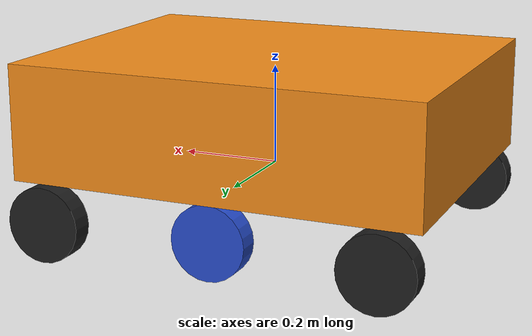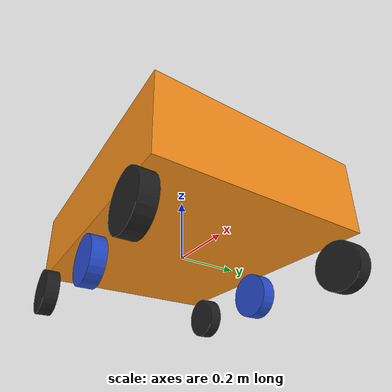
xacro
<?xml version="1.0"?>
<robot xmlns:xacro="http://www.ros.org/wiki/xacro">

    <xacro:include filename="colors.xacro" />
    <xacro:include filename="inertial_macros.xacro" />

    <!-- BASE LINK -->

    <link name="base_link">

    </link>

    <!-- BASE_FOOTPRINT LINK -->

    <joint name="base_footprint_joint" type="fixed">
        <parent link="base_link" />
        <child link="base_footprint" />
        <origin xyz="0 0 0" rpy="0 0 0" />
    </joint>

    <link name="base_footprint">
    </link>

    <!-- CHASSIS LINK -->

    <joint name="chassis_joint" type="fixed">
        <parent link="base_link" />
        <child link="chassis" />
        <origin xyz="-0.41 0 0" />
    </joint>

    <link name="chassis">
        <visual>
            <origin xyz="0.41 0 0.115" />
            <geometry>
                <box size="0.82 0.65 0.23" />
            </geometry>
            <material name="orange" />
        </visual>
        <collision>
            <origin xyz="0.41 0 0.115" />
            <geometry>
                <box size="0.82 0.65 0.23" />
            </geometry>
        </collision>
        <xacro:inertial_box mass="15.0" x="0.3" y="0.3" z="0.15">
            <origin xyz="0.15 0 0.075" rpy="0 0 0" />
        </xacro:inertial_box>
    </link>

    <gazebo reference="chassis">
        <material>Gazebo/Orange</material>
    </gazebo>

    <!-- LEFT WHEEL LINK -->

    <joint name="left_wheel_joint" type="continuous">
        <parent link="base_link" />
        <child link="left_wheel" />
        <origin xyz="0 0.295 -0.075" rpy="-${pi/2} 0 0" />
        <axis xyz="0 0 1" />
    </joint>

    <link name="left_wheel">
        <visual>
            <geometry>
                <cylinder radius="0.074" length="0.045" />
            </geometry>
            <material name="blue" />
        </visual>
        <collision>
            <geometry>
                <sphere radius="0.074" />
            </geometry>
        </collision>
        <xacro:inertial_cylinder mass="2.0" length="0.045" radius="0.074">
            <origin xyz="0 0 0" rpy="0 0 0" />
        </xacro:inertial_cylinder>
    </link>

    <gazebo reference="left_wheel">
        <material>Gazebo/Blue</material>
    </gazebo>

    <!-- RIGHT WHEEL LINK -->

    <joint name="right_wheel_joint" type="continuous">
        <parent link="base_link" />
        <child link="right_wheel" />
        <origin xyz="0 -0.295 -0.075" rpy="${pi/2} 0 0" />
        <axis xyz="0 0 -1" />
    </joint>

    <link name="right_wheel">
        <visual>
            <geometry>
                <cylinder radius="0.074" length="0.045" />
            </geometry>
            <material name="blue" />
        </visual>
        <collision>
            <geometry>
                <sphere radius="0.074" />
            </geometry>
        </collision>
        <xacro:inertial_cylinder mass="2.0" length="0.045" radius="0.074">
            <origin xyz="0 0 0" rpy="0 0 0" />
        </xacro:inertial_cylinder>
    </link>

    <gazebo reference="right_wheel">
        <material>Gazebo/Blue</material>
    </gazebo>

    <!-- CASTER WHEEL LINK FRONT LEFT-->

    <joint name="caster_wheel_joint_FL" type="fixed">
        <parent link="chassis" />
        <child link="caster_wheel_fl" />
        <origin xyz="0.745 0.325 -0.075" rpy="-${pi/2} 0 0" />
    </joint>

    <link name="caster_wheel_fl">
        <visual>
            <geometry>
                <cylinder radius="0.075" length="0.045" />
            </geometry>
            <material name="black" />
        </visual>
        <collision>
            <geometry>
                <sphere radius="0.075" />
            </geometry>
        </collision>
        <xacro:inertial_cylinder mass="1.0" length="0.045" radius="0.075">
            <origin xyz="0 0 0" rpy="0 0 0" />
        </xacro:inertial_cylinder>
    </link>

    <gazebo reference="caster_wheel_fl">
        <material>Gazebo/Black</material>
        <mu1 value="0.001" />
        <mu2 value="0.001" />
    </gazebo>

    <!-- CASTER WHEEL LINK FRONT RIGHT-->

    <joint name="caster_wheel_joint_FR" type="fixed">
        <parent link="chassis" />
        <child link="caster_wheel_fr" />
        <origin xyz="0.745 -0.325 -0.075" rpy="${pi/2} 0 0" />
    </joint>

    <link name="caster_wheel_fr">
        <visual>
            <geometry>
                <cylinder radius="0.075" length="0.045" />
            </geometry>
            <material name="black" />
        </visual>
        <collision>
            <geometry>
                <sphere radius="0.075" />
            </geometry>
        </collision>
        <xacro:inertial_cylinder mass="1.0" length="0.045" radius="0.075">
            <origin xyz="0 0 0" rpy="0 0 0" />
        </xacro:inertial_cylinder>
    </link>

    <gazebo reference="caster_wheel_fr">
        <material>Gazebo/Black</material>
        <mu1 value="0.001" />
        <mu2 value="0.001" />
    </gazebo>

    <!-- CASTER WHEEL LINK REAR RIGHT-->

    <joint name="caster_wheel_joint_RR" type="fixed">
        <parent link="chassis" />
        <child link="caster_wheel_rr" />
        <origin xyz="0.075 -0.325 -0.075" rpy="${pi/2} 0 0" />
    </joint>

    <link name="caster_wheel_rr">
        <visual>
            <geometry>
                <cylinder radius="0.075" length="0.045" />
            </geometry>
            <material name="black" />
        </visual>
        <collision>
            <geometry>
                <sphere radius="0.075" />
            </geometry>
        </collision>
        <xacro:inertial_cylinder mass="1.0" length="0.045" radius="0.075">
            <origin xyz="0 0 0" rpy="0 0 0" />
        </xacro:inertial_cylinder>
    </link>

    <gazebo reference="caster_wheel_rr">
        <material>Gazebo/Black</material>
        <mu1 value="0.001" />
        <mu2 value="0.001" />
    </gazebo>

    <!-- CASTER WHEEL LINK REAR LEFT-->

    <joint name="caster_wheel_joint_RL" type="fixed">
        <parent link="chassis" />
        <child link="caster_wheel_rl" />
        <origin xyz="0.075 0.325 -0.075" rpy="-${pi/2} 0 0" />
    </joint>

    <link name="caster_wheel_rl">
        <visual>
            <geometry>
                <cylinder radius="0.075" length="0.045" />
            </geometry>
            <material name="black" />
        </visual>
        <collision>
            <geometry>
                <sphere radius="0.075" />
            </geometry>
        </collision>
        <xacro:inertial_cylinder mass="1.0" length="0.045" radius="0.075">
            <origin xyz="0 0 0" rpy="0 0 0" />
        </xacro:inertial_cylinder>
    </link>

    <gazebo reference="caster_wheel_rl">
        <material>Gazebo/Black</material>
        <mu1 value="0.001" />
        <mu2 value="0.001" />
    </gazebo>

</robot>
